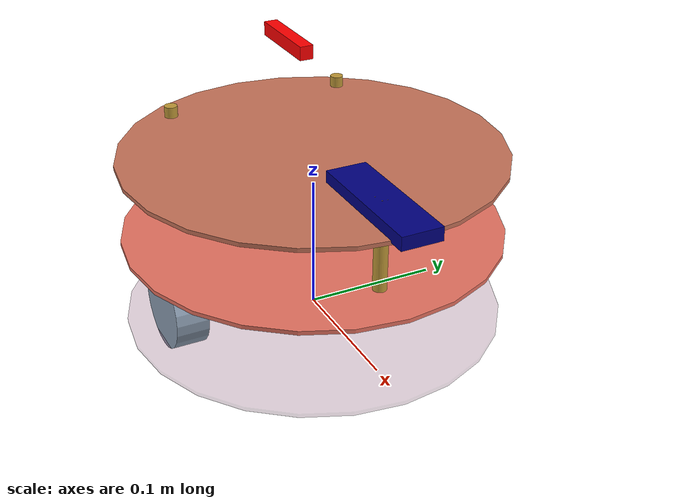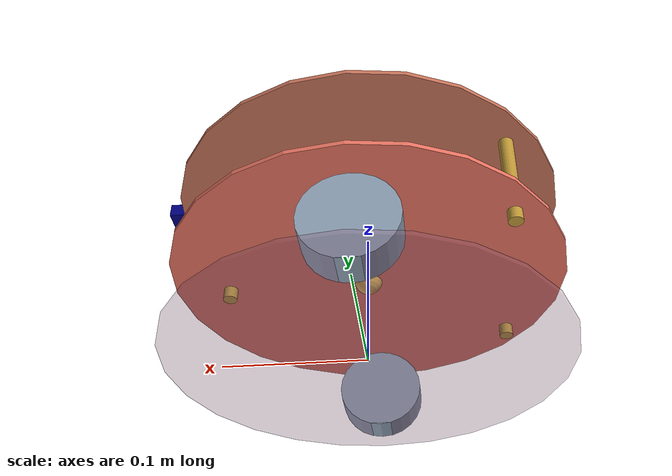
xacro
<?xml version="1.0"?>
<robot name="dome_x1" xmlns:xacro="http://www.ros.org/wiki/xacro">

  <!-- Parameters -->
  <xacro:property name="plate_diameter" value="0.280" />
  <xacro:property name="plate_thickness" value="0.003" />
  <xacro:property name="bottom_plate_height" value="0.065" />
  <xacro:property name="top_plate_height" value="0.125" />
  <xacro:property name="base_link_x_offset" value="0.0" />
  <xacro:property name="wheel_base" value="0.215" />
  <xacro:property name="wheel_diameter" value="0.0625" />
  <xacro:property name="wheel_width" value="0.024" />
  <xacro:property name="support_post_diameter" value="0.010" />
  <xacro:property name="support_post_height" value="0.080" />
  <xacro:property name="laser_x_offset" value="-0.040" />
  <xacro:property name="laser_z_offset" value="0.130" />
  <xacro:property name="imu_x_offset" value="-0.040" />
  <xacro:property name="imu_z_offset" value="0.020" />
  <xacro:property name="front_marker_x_offset" value="0.1" />
  <xacro:property name="front_marker_z_offset" value="0.065" />

  <!-- Materials -->
  <material name="slate">
  <color rgba="0.35 0.40 0.45 1.0"/>
</material>

<material name="red">
  <color rgba="1 0 0 1"/>
</material>

<material name="orange">
  <color rgba="1 0.5 0 1"/>
</material>

<material name="darkblue">
  <color rgba="0 0 0.5 1"/>
</material>

<material name="coral">
  <color rgba="0.91 0.45 0.38 1.0"/>
</material>

<material name="sage">
  <color rgba="0.56 0.68 0.53 1.0"/>
</material>

<material name="gold">
  <color rgba="0.85 0.68 0.32 1.0"/>
</material>

<material name="steel">
  <color rgba="0.55 0.62 0.70 1.0"/>
</material>

<material name="plum">
  <color rgba="0.56 0.35 0.48 0.3"/>
</material>

<material name="terracotta">
  <color rgba="0.78 0.45 0.35 1.0"/>
</material>

<material name="seafoam">
  <color rgba="0.42 0.70 0.65 1.0"/>
</material>

<material name="mustard">
  <color rgba="0.75 0.60 0.22 1.0"/>
</material>

<material name="dusty_rose">
  <color rgba="0.72 0.52 0.55 1.0"/>
</material>

<material name="charcoal">
  <color rgba="0.25 0.27 0.30 1.0"/>
</material>

<material name="light_blue">
  <color rgba="0.5 0.8 1.0 1.0"/>
</material>

  <!-- Base footprint (ground projection) -->
  <link name="base_footprint">
    <visual>
      <origin xyz="0 0 0" rpy="0 0 0"/>
      <geometry>
        <cylinder radius="${plate_diameter/2}" length="${plate_thickness}"/>
      </geometry>
      <material name="plum"/>
    </visual>
  </link>

  <!-- Base link (center of the robot) -->
  <link name="base_link">
      <visual>
        <geometry>
          <sphere radius="0.01"/>
        </geometry>
        <material name="gold"/>
      </visual>
  </link>

  <joint name="base_link_to_base_footprint" type="fixed">
    <parent link="base_footprint"/>
    <child link="base_link"/>
    <origin xyz="${-base_link_x_offset} 0 ${bottom_plate_height}" rpy="0 0 0"/>
  </joint>

  <!-- Bottom plate -->
  <link name="bottom_plate">
    <visual>
      <origin xyz="0 0 0" rpy="0 0 0"/>
      <geometry>
        <cylinder radius="${plate_diameter/2}" length="${plate_thickness}"/>
      </geometry>
      <material name="coral"/>
    </visual>
    <collision>
      <origin xyz="0 0 0" rpy="0 0 0"/>
      <geometry>
        <cylinder radius="${plate_diameter/2}" length="${plate_thickness}"/>
      </geometry>
    </collision>
  </link>

  <joint name="base_link_to_bottom_plate" type="fixed">
    <parent link="base_link"/>
    <child link="bottom_plate"/>
    <origin xyz="${-base_link_x_offset} 0 0" rpy="0 0 0"/>
  </joint>

  <!-- Top plate -->
  <link name="top_plate">
    <visual>
      <origin xyz="0 0 0" rpy="0 0 0"/>
      <geometry>
        <cylinder radius="${plate_diameter/2}" length="${plate_thickness}"/>
      </geometry>
      <material name="terracotta"/>
    </visual>
    <collision>
      <origin xyz="0 0 0" rpy="0 0 0"/>
      <geometry>
        <cylinder radius="${plate_diameter/2}" length="${plate_thickness}"/>
      </geometry>
    </collision>
  </link>

  <joint name="base_link_to_top_plate" type="fixed">
    <parent link="base_link"/>
    <child link="top_plate"/>
    <origin xyz="${-base_link_x_offset} 0 ${top_plate_height - bottom_plate_height}" rpy="0 0 0"/>
  </joint>

  <!-- Support post macro -->
  <xacro:macro name="support_post" params="name x_pos y_pos">
    <link name="${name}">
      <visual>
        <origin xyz="0 0 0" rpy="0 0 0"/>
        <geometry>
          <cylinder radius="${support_post_diameter/2}" length="${support_post_height}"/>
        </geometry>
        <material name="mustard"/>
      </visual>
      <collision>
        <origin xyz="0 0 0" rpy="0 0 0"/>
        <geometry>
          <cylinder radius="${support_post_diameter/2}" length="${support_post_diameter}"/>
        </geometry>
      </collision>
    </link>

    <joint name="base_link_to_${name}" type="fixed">
      <parent link="base_link"/>
      <child link="${name}"/>
      <origin xyz="${x_pos} ${y_pos} ${(top_plate_height - bottom_plate_height)/2}" rpy="0 0 0"/>
    </joint>
  </xacro:macro>

  <!-- Support posts -->
  <xacro:support_post name="support_post_1" x_pos="0.1" y_pos="0"/>
  <xacro:support_post name="support_post_2" x_pos="-0.1" y_pos="0.070"/>
  <xacro:support_post name="support_post_3" x_pos="-0.1" y_pos="-0.070"/>

  <!-- Wheel macro -->
  <xacro:macro name="wheel" params="side reflect">
    <link name="${side}_wheel">
      <visual>
        <origin xyz="0 0 0" rpy="1.57 0 0"/>
        <geometry>
          <cylinder radius="${wheel_diameter/2}" length="${wheel_width}"/>
        </geometry>
        <material name="steel"/>
      </visual>
      <collision>
        <origin xyz="0 0 0" rpy="1.57 0 0"/>
        <geometry>
          <cylinder radius="${wheel_diameter/2}" length="${wheel_width}"/>
        </geometry>
      </collision>
    </link>

    <joint name="base_link_to_${side}_wheel" type="continuous">
      <parent link="base_link"/>
      <child link="${side}_wheel"/>
      <origin xyz="0 ${reflect * wheel_base/2} ${-wheel_diameter/2 - 0.005}" rpy="0 0 0"/>
      <axis xyz="0 1 0"/>
    </joint>
  </xacro:macro>

  <!-- Wheels -->
  <xacro:wheel side="left" reflect="1"/>
  <xacro:wheel side="right" reflect="-1"/>

  <!-- laser -->
  <link name="laser">
    <visual>
      <origin xyz="0 0 0" rpy="0 0 ${pi/2.0}"/>
      <geometry>
          <box size="0.06 0.01 0.01"/>
      </geometry>
      <material name="red"/>
    </visual>
  </link>

  <joint name="base_link_to_laser" type="fixed">
    <parent link="base_link"/>
    <child link="laser"/>
    <origin xyz="${laser_x_offset} 0 ${laser_z_offset}" rpy="0 0 ${-pi/2.0}"/>
  </joint>

  <!-- IMU_link -->
  <link name="imu_link">
    <visual>
      <origin xyz="0 0 0" rpy="0 0 0"/>
      <geometry>
        <box size="0.020 0.020 0.010"/>
      </geometry>
      <material name="orange"/>
    </visual>
    <collision>
      <origin xyz="0 0 0" rpy="0 0 0"/>
      <geometry>
        <box size="0.020 0.020 0.010"/>
      </geometry>
    </collision>
  </link>

  <joint name="base_link_to_imu" type="fixed">
    <parent link="base_link"/>
    <child link="imu_link"/>
    <origin xyz="${imu_x_offset} 0 ${imu_z_offset}" rpy="0 0 0"/>
  </joint>

  <!-- Front marker -->
  <link name="front_marker">
    <visual>
      <origin xyz="0 0 0" rpy="0 0 0"/>
      <geometry>
        <box size="0.10 0.030 0.010"/>
      </geometry>
      <material name="darkblue"/>
    </visual>
  </link>

  <joint name="base_link_to_front_marker" type="fixed">
    <parent link="base_link"/>
    <child link="front_marker"/>
    <origin xyz="${front_marker_x_offset} 0 ${front_marker_z_offset}" rpy="0 0 0"/>
  </joint>

</robot>
